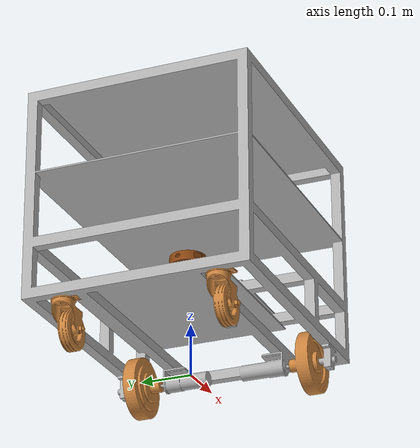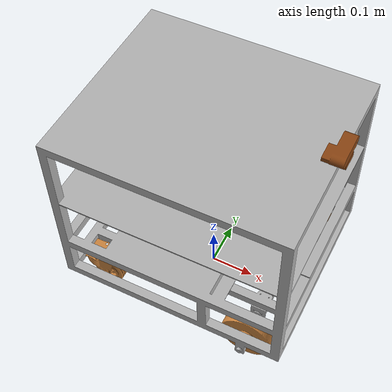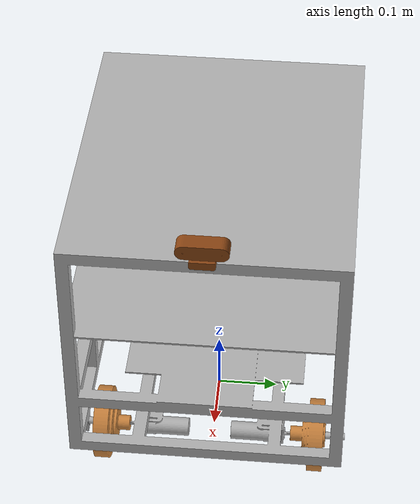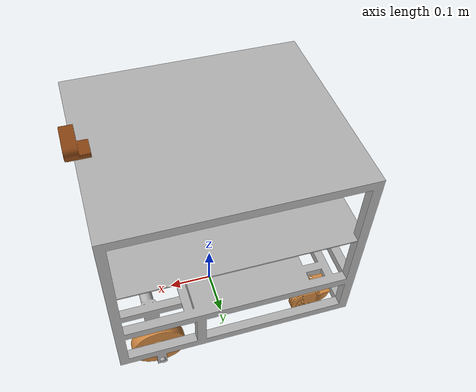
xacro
<?xml version="1.0" ?>
<robot name="mobi" xmlns:xacro="http://www.ros.org/wiki/xacro">

    <xacro:include filename="$(find mobi_description)/urdf/materials.xacro" />
    <xacro:include filename="$(find mobi_description)/urdf/gazebo.xacro" />
    <xacro:include filename="$(find mobi_description)/urdf/ros2_control.xacro" />
    <xacro:include filename="$(find mobi_description)/urdf/mobi_base.xacro" />

</robot>

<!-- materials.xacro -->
<robot name="mobi" xmlns:xacro="http://www.ros.org/wiki/xacro">
    <!-- Rviz Materials -->

    <!-- Silver material -->
    <material name="silver">
        <color rgba="0.700 0.700 0.700 1.000"/>
    </material>

    <!-- Mud Yellow -->
    <material name="mud_yellow">
        <color rgba="0.804 0.522 0.247 1.000"/>
    </material>

    <!-- Purple -->
    <material name="purple">
        <color rgba="0.502 0.000 0.502 1.000"/>
    </material>

    <!-- Matte Brown -->
    <material name="matte_brown">
        <color rgba="0.545 0.271 0.075 1.000"/> <!-- RGB for a rich matte brown -->
    </material>

    <!-- Cream -->
    <material name="cream">
        <color rgba="1.000 0.980 0.850 1.000"/>
    </material>

    <xacro:macro name="box_inertia" params="m l w h xyz rpy">
        <inertial>
            <origin xyz="${xyz}" rpy="${rpy}" />
            <mass value="${m}" />
            <inertia ixx="${(m/12) * (h*h + l*l)}" ixy="0" ixz="0"
                     iyy="${(m/12) * (w*w + l*l)}" iyz="0"
                     izz="${(m/12) * (w*w + h*h)}" />
        </inertial>
    </xacro:macro>

    <xacro:macro name="cylinder_inertia" params="m r h xyz rpy">
        <inertial>
            <origin xyz="${xyz}" rpy="${rpy}" />
            <mass value="${m}" />
            <inertia ixx="${(m/12) * (3*r*r + h*h)}" ixy="0" ixz="0"
                     iyy="${(m/12) * (3*r*r + h*h)}" iyz="0"
                     izz="${(m/2) * (r*r)}" />
        </inertial>
    </xacro:macro>

    <xacro:macro name="sphere_inertia" params="m r xyz rpy">
        <inertial>
            <origin xyz="${xyz}" rpy="${rpy}" />
            <mass value="${m}" />
            <inertia ixx="${((2*m)/5) * (r*r)}" ixy="0" ixz="0"
                     iyy="${((2*m)/5) * (r*r)}" iyz="0"
                     izz="${((2*m)/5) * (r*r)}" />
        </inertial>
    </xacro:macro>

    <xacro:macro name="default_inertial" params="mass">
        <inertial>
            <origin xyz="0 0 0" rpy="0 0 0"/>
            <mass value="${mass}" />
            <inertia ixx="1.0" ixy="0.0" ixz="0.0"
                     iyy="1.0" iyz="0.0"
                     izz="1.0" />
        </inertial>
    </xacro:macro>

</robot>

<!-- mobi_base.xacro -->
<robot name="mobi" xmlns:xacro="http://www.ros.org/wiki/xacro">

<!-- Load Simulated or Real Hardware Interfaces -->
<xacro:arg name="is_sim" default="false"/>

<link name="base_footprint"/>

<link name="base_link">
    <inertial>
        <origin xyz="0.0 0.0 -0.0" rpy="0.0 0.0 0.0"/>
        <mass value="5.0"/>
        <inertia ixx="0.1" ixy="0.0" ixz="0.0" iyy="0.1" iyz="0.0" izz="0.1"/>
    </inertial>
    <visual>
        <origin xyz="0.0 0.0 -0.0" rpy="0.0 0.0 0.0"/>
        <geometry>
            <mesh filename="package://mobi_description/meshes/base_link.stl" scale="0.001 0.001 0.001"/>
        </geometry>
        <material name="silver"/>
    </visual>
    <collision>
        <origin xyz="0.0 0.0 -0.0" rpy="0.0 0.0 0.0"/>
        <geometry>
             <mesh filename="package://mobi_description/meshes/base_link.stl" scale="0.001 0.001 0.001"/>
        </geometry>
    </collision>
</link>

<joint name="base_joint" type="fixed">
    <origin xyz="0.0 0.0 0.0" rpy="0.0 0.0 0.0"/>
    <parent link="base_footprint"/>
    <child link="base_link"/>
</joint>

<link name="right_wheel">
    <inertial>
        <origin xyz="-0.17 0.175 -0.06" rpy="0.0 0.0 0.0"/>
        <mass value="1.0"/>
        <inertia ixx="0.1" ixy="0.0" ixz="0.0" iyy="0.1" iyz="0.0" izz="0.1"/>
    </inertial>
    <visual>
        <origin xyz="-0.17 0.175 -0.06" rpy="0.0 0.0 0.0"/>
        <geometry>
            <mesh filename="package://mobi_description/meshes/right_wheel.stl" scale="0.001 0.001 0.001"/>
        </geometry>
        <material name="mud_yellow"/>
    </visual>
    <collision>
        <origin xyz="-0.17 0.175 -0.06" rpy="0.0 0.0 0.0"/>
        <geometry>
             <mesh filename="package://mobi_description/meshes/right_wheel.stl" scale="0.001 0.001 0.001"/>
        </geometry>
    </collision>
</link>

<joint name="right_wheel_joint" type="continuous">
    <origin xyz="0.17 -0.175 0.06" rpy="0.0 0.0 0.0"/>
    <parent link="base_link"/>
    <child link="right_wheel"/>
    <axis xyz="-0.0 1.0 0.0"/>
</joint>

<link name="left_wheel">
    <inertial>
        <origin xyz="-0.169 -0.175 -0.059" rpy="0.0 0.0 0.0"/>
        <mass value="1.0"/>
        <inertia ixx="0.1" ixy="0.0" ixz="0.0" iyy="0.1" iyz="0.0" izz="0.1"/>
    </inertial>
    <visual>
        <origin xyz="-0.169 -0.175 -0.059" rpy="0.0 0.0 0.0"/>
        <geometry>
            <mesh filename="package://mobi_description/meshes/left_wheel.stl" scale="0.001 0.001 0.001"/>
        </geometry>
        <material name="mud_yellow"/>
    </visual>
    <collision>
        <origin xyz="-0.169 -0.175 -0.059" rpy="0.0 0.0 0.0"/>
        <geometry>
             <mesh filename="package://mobi_description/meshes/left_wheel.stl" scale="0.001 0.001 0.001"/>
        </geometry>
    </collision>
</link>

<joint name="left_wheel_joint" type="continuous">
    <origin xyz="0.169 0.175 0.059" rpy="0.0 0.0 0.0"/>
    <parent link="base_link"/>
    <child link="left_wheel"/>
    <axis xyz="-0.0 1.0 0.0"/>
</joint>

<link name="left_castor_wheel">
    <inertial>
        <origin xyz="0.23 -0.15 -0.08" rpy="0.0 0.0 0.0"/>
        <mass value="1.0"/>
        <inertia ixx="0.1" ixy="0.0" ixz="0.0" iyy="0.1" iyz="0.0" izz="0.1"/>
    </inertial>
    <visual>
        <origin xyz="0.23 -0.15 -0.08" rpy="0.0 0.0 0.0"/>
        <geometry>
            <mesh filename="package://mobi_description/meshes/castor_left.stl" scale="0.001 0.001 0.001"/>
        </geometry>
        <material name="mud_yellow"/>
    </visual>
    <collision>
        <origin xyz="0.23 -0.25 -0.08" rpy="0.0 0.0 0.0"/>
        <geometry>
             <mesh filename="package://mobi_description/meshes/castor_left_collision.stl" scale="0.001 0.001 0.001"/>
        </geometry>
    </collision>
</link>

<joint name="left_castor_joint" type="fixed">
    <origin xyz="-0.23 0.15 0.08" rpy="0.0 0.0 0.0"/>
    <parent link="base_link"/>
    <child link="left_castor_wheel"/>
</joint>

<link name="right_castor_wheel">
    <inertial>
        <origin xyz="0.23 0.15 -0.08" rpy="0.0 0.0 0.0"/>
        <mass value="1.0"/>
        <inertia ixx="0.1" ixy="0.0" ixz="0.0" iyy="0.1" iyz="0.0" izz="0.1"/>
    </inertial>
    <visual>
        <origin xyz="0.23 0.15 -0.08" rpy="0.0 0.0 0.0"/>
        <geometry>
            <mesh filename="package://mobi_description/meshes/castor_right.stl" scale="0.001 0.001 0.001"/>
        </geometry>
        <material name="mud_yellow"/>
    </visual>
    <collision>
        <origin xyz="0.23 0.15 -0.0" rpy="0.0 0.0 0.0"/>
        <geometry>
             <mesh filename="package://mobi_description/meshes/castor_right_collision.stl" scale="0.001 0.001 0.001"/>
        </geometry>
    </collision>
</link>

<joint name="right_castor_joint" type="fixed">
    <origin xyz="-0.23 -0.15 0.08" rpy="0.0 0.0 0.0"/>
    <parent link="base_link"/>
    <child link="right_castor_wheel"/>
</joint>

<link name="lidar_link">
    <inertial>
        <origin xyz="-0.154 0.0 -0.19" rpy="0.0 0.0 0.0"/>
        <mass value="0.5"/>
        <inertia ixx="0.1" ixy="0.0" ixz="0.0" iyy="0.1" iyz="0.0" izz="0.1"/>
    </inertial>
    <visual>
        <origin xyz="-0.154 0.0 -0.19" rpy="0.0 0.0 0.0"/>
        <geometry>
            <mesh filename="package://mobi_description/meshes/lidar.stl" scale="0.001 0.001 0.001"/>
        </geometry>
        <material name="matte_brown"/>
    </visual>
    <collision>
        <origin xyz="-0.154 0.0 -0.19" rpy="0.0 0.0 0.0"/>
        <geometry>
             <mesh filename="package://mobi_description/meshes/lidar.stl" scale="0.001 0.001 0.001"/>
        </geometry>
    </collision>
</link>

<joint name="lidar_joint" type="fixed">
    <origin xyz="0.154 0.0 0.19" rpy="0.0 0.0 0.0"/>
    <parent link="base_link"/>
    <child link="lidar_link"/>
</joint>

<link name="camera_link">
    <inertial>
        <origin xyz="-0.276 0.0 -0.535" rpy="0.0 0.0 0.0"/>
        <mass value="0.5"/>
        <inertia ixx="0.1" ixy="0.0" ixz="0.0" iyy="0.1" iyz="0.0" izz="0.1"/>
    </inertial>
    <visual>
        <origin xyz="-0.276 0.0 -0.535" rpy="0.0 0.0 0.0"/>
        <geometry>
            <mesh filename="package://mobi_description/meshes/camera.stl" scale="0.001 0.001 0.001"/>
        </geometry>
        <material name="matte_brown"/>
    </visual>
    <collision>
        <origin xyz="-0.276 0.0 -0.535" rpy="0.0 0.0 0.0"/>
        <geometry>
             <mesh filename="package://mobi_description/meshes/camera.stl" scale="0.001 0.001 0.001"/>
        </geometry>
    </collision>
</link>

<joint name="camera_joint" type="fixed">
    <origin xyz="0.276 0.0 0.535" rpy="0.0 0.0 0.0"/>
    <parent link="base_link"/>
    <child link="camera_link"/>
</joint>

<link name="camera_link_optical" />

<joint name="camera_optical_joint" type="fixed">
    <parent link="camera_link"/>
    <child link="camera_link_optical"/>
    <origin xyz="0 0 0" rpy="${-pi/2} 0 ${-pi/2}"/>
</joint>

<link name="imu_link">
    <inertial>
        <origin xyz="0.0 0.0 0.0" rpy="0.0 0.0 0.0"/>
        <mass value="0.1"/>
        <inertia ixx="0.1" ixy="0.0" ixz="0.0" iyy="0.1" iyz="0.0" izz="0.1"/>
    </inertial>
    <visual>
        <origin xyz="0.0 0.0 0.0" rpy="0.0 0.0 0.0"/>
        <geometry>
            <box size="0.02 0.02 0.005"/>
        </geometry>
        <material name="silver"/>
    </visual>
    <collision>
        <origin xyz="0.0 0.0 0.0" rpy="0.0 0.0 0.0"/>
        <geometry>
            <box size="0.02 0.02 0.005"/>
        </geometry>
    </collision>
</link>

<joint name="imu_joint" type="fixed">
    <origin xyz="0.02 -0.07 0.098" rpy="0.0 0.0 0.0"/>
    <parent link="base_link"/>
    <child link="imu_link"/>
</joint>

</robot>
